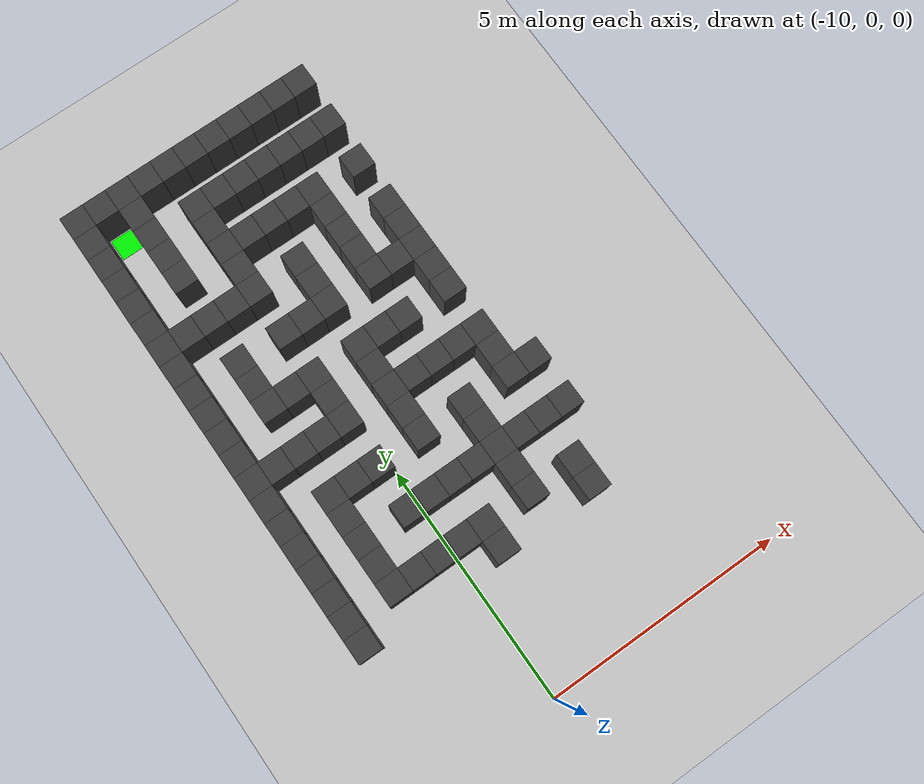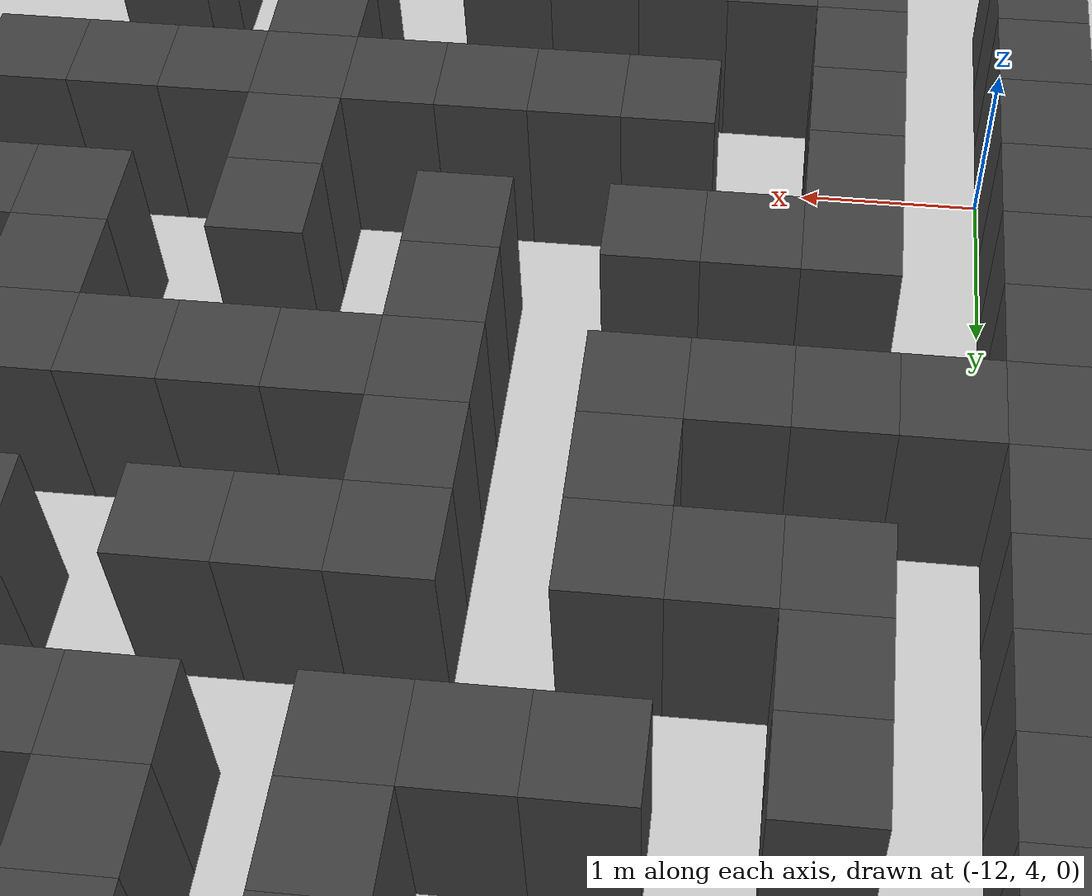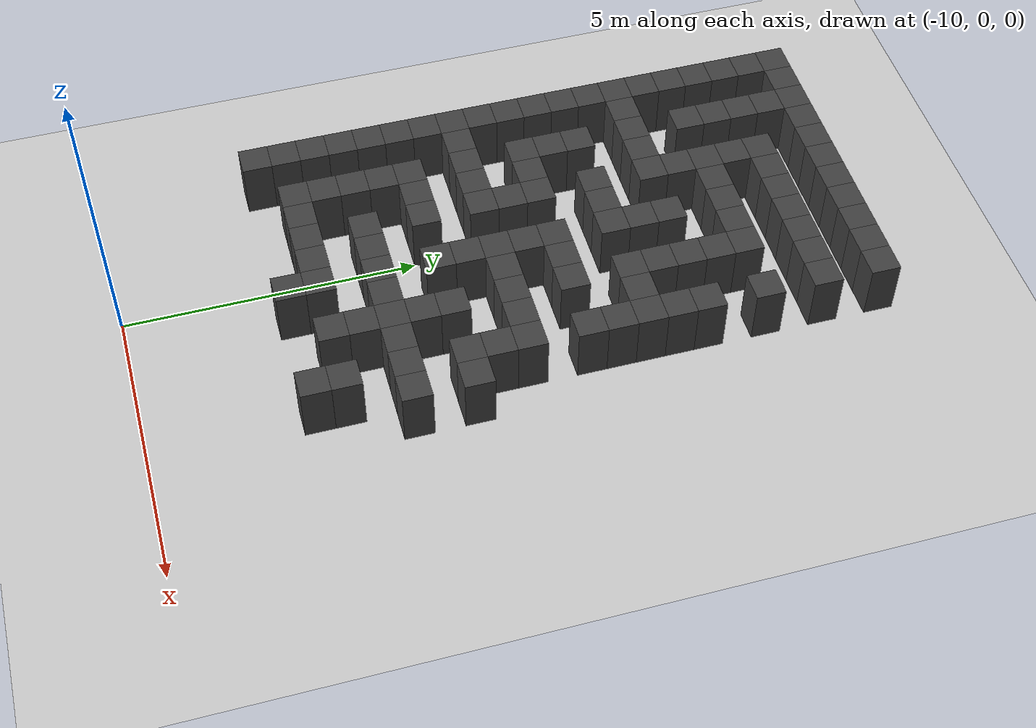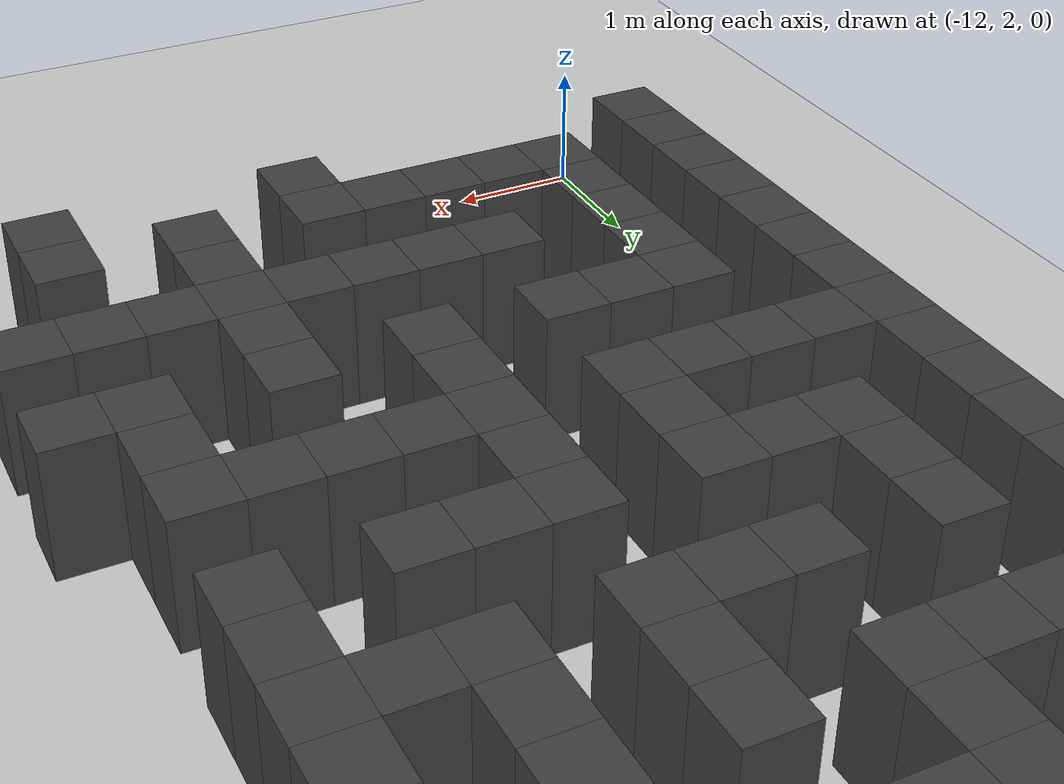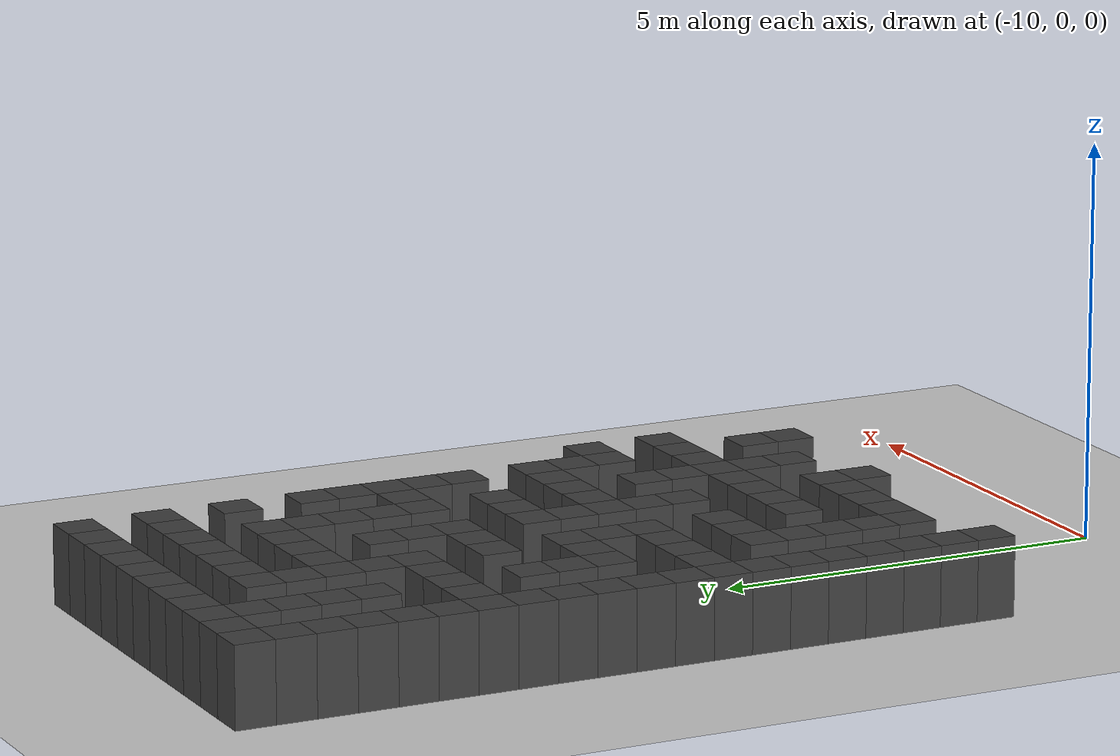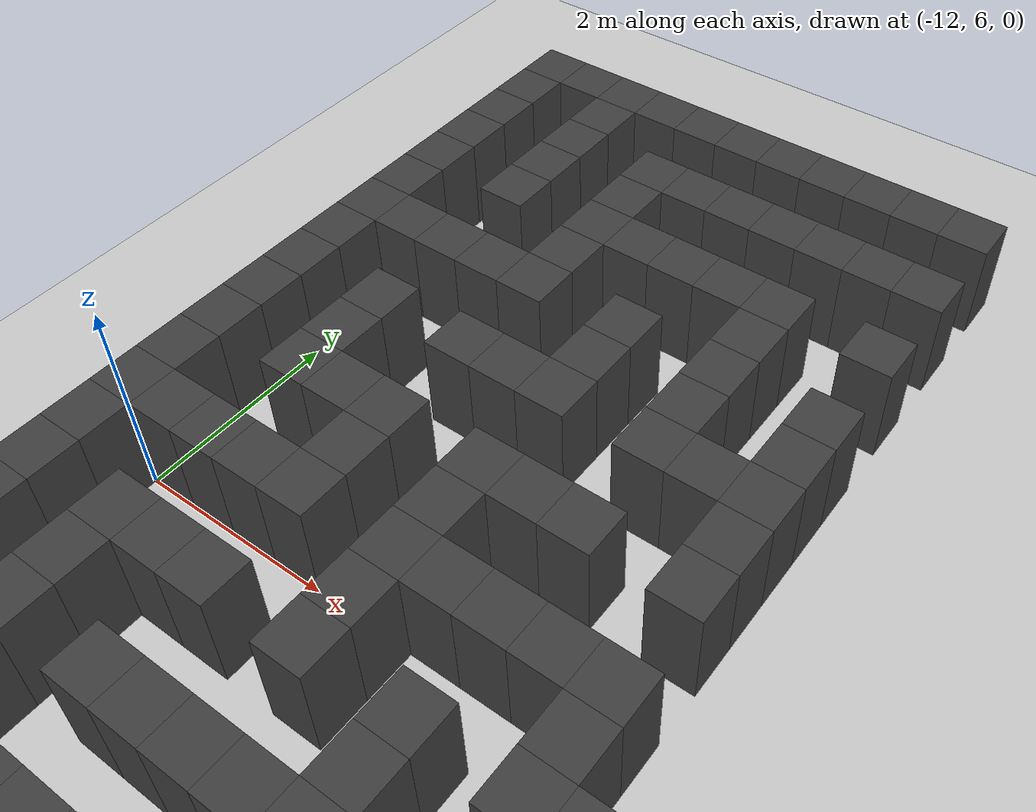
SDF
<sdf version="1.7">
 <world name="map_18505">
  <model name="ground_plane">
   <static>true</static>
   <link name="link">
    <collision name="collision">
     <geometry><plane><normal>0 0 1</normal><size>200 200</size></plane></geometry>
    </collision>
    <visual name="visual">
     <geometry><plane><normal>0 0 1</normal><size>200 200</size></plane></geometry>
     <material><ambient>0.8 0.8 0.8 1</ambient><diffuse>0.8 0.8 0.8 1</diffuse></material>
    </visual>
   </link>
  </model>
  <model name="maze_environment">
   <static>true</static>
   <link name="wall_0">
    <pose>-12.250 12.250 0.500 0 0 0</pose>
    <collision name="col"><geometry><box><size>0.5 0.5 1.0</size></box></geometry></collision>
    <visual name="vis">
     <geometry><box><size>0.5 0.5 1.0</size></box></geometry>
     <material><ambient>0.15 0.15 0.15 1</ambient><diffuse>0.25 0.25 0.25 1</diffuse></material>
    </visual>
   </link>
   <link name="wall_1">
    <pose>-11.750 12.250 0.500 0 0 0</pose>
    <collision name="col"><geometry><box><size>0.5 0.5 1.0</size></box></geometry></collision>
    <visual name="vis">
     <geometry><box><size>0.5 0.5 1.0</size></box></geometry>
     <material><ambient>0.15 0.15 0.15 1</ambient><diffuse>0.25 0.25 0.25 1</diffuse></material>
    </visual>
   </link>
   <link name="wall_2">
    <pose>-11.250 12.250 0.500 0 0 0</pose>
    <collision name="col"><geometry><box><size>0.5 0.5 1.0</size></box></geometry></collision>
    <visual name="vis">
     <geometry><box><size>0.5 0.5 1.0</size></box></geometry>
     <material><ambient>0.15 0.15 0.15 1</ambient><diffuse>0.25 0.25 0.25 1</diffuse></material>
    </visual>
   </link>
   <link name="wall_3">
    <pose>-10.750 12.250 0.500 0 0 0</pose>
    <collision name="col"><geometry><box><size>0.5 0.5 1.0</size></box></geometry></collision>
    <visual name="vis">
     <geometry><box><size>0.5 0.5 1.0</size></box></geometry>
     <material><ambient>0.15 0.15 0.15 1</ambient><diffuse>0.25 0.25 0.25 1</diffuse></material>
    </visual>
   </link>
   <link name="wall_4">
    <pose>-10.250 12.250 0.500 0 0 0</pose>
    <collision name="col"><geometry><box><size>0.5 0.5 1.0</size></box></geometry></collision>
    <visual name="vis">
     <geometry><box><size>0.5 0.5 1.0</size></box></geometry>
     <material><ambient>0.15 0.15 0.15 1</ambient><diffuse>0.25 0.25 0.25 1</diffuse></material>
    </visual>
   </link>
   <link name="wall_5">
    <pose>-9.750 12.250 0.500 0 0 0</pose>
    <collision name="col"><geometry><box><size>0.5 0.5 1.0</size></box></geometry></collision>
    <visual name="vis">
     <geometry><box><size>0.5 0.5 1.0</size></box></geometry>
     <material><ambient>0.15 0.15 0.15 1</ambient><diffuse>0.25 0.25 0.25 1</diffuse></material>
    </visual>
   </link>
   <link name="wall_6">
    <pose>-9.250 12.250 0.500 0 0 0</pose>
    <collision name="col"><geometry><box><size>0.5 0.5 1.0</size></box></geometry></collision>
    <visual name="vis">
     <geometry><box><size>0.5 0.5 1.0</size></box></geometry>
     <material><ambient>0.15 0.15 0.15 1</ambient><diffuse>0.25 0.25 0.25 1</diffuse></material>
    </visual>
   </link>
   <link name="wall_7">
    <pose>-8.750 12.250 0.500 0 0 0</pose>
    <collision name="col"><geometry><box><size>0.5 0.5 1.0</size></box></geometry></collision>
    <visual name="vis">
     <geometry><box><size>0.5 0.5 1.0</size></box></geometry>
     <material><ambient>0.15 0.15 0.15 1</ambient><diffuse>0.25 0.25 0.25 1</diffuse></material>
    </visual>
   </link>
   <link name="wall_8">
    <pose>-8.250 12.250 0.500 0 0 0</pose>
    <collision name="col"><geometry><box><size>0.5 0.5 1.0</size></box></geometry></collision>
    <visual name="vis">
     <geometry><box><size>0.5 0.5 1.0</size></box></geometry>
     <material><ambient>0.15 0.15 0.15 1</ambient><diffuse>0.25 0.25 0.25 1</diffuse></material>
    </visual>
   </link>
   <link name="wall_9">
    <pose>-7.750 12.250 0.500 0 0 0</pose>
    <collision name="col"><geometry><box><size>0.5 0.5 1.0</size></box></geometry></collision>
    <visual name="vis">
     <geometry><box><size>0.5 0.5 1.0</size></box></geometry>
     <material><ambient>0.15 0.15 0.15 1</ambient><diffuse>0.25 0.25 0.25 1</diffuse></material>
    </visual>
   </link>
   <link name="wall_10">
    <pose>-7.250 12.250 0.500 0 0 0</pose>
    <collision name="col"><geometry><box><size>0.5 0.5 1.0</size></box></geometry></collision>
    <visual name="vis">
     <geometry><box><size>0.5 0.5 1.0</size></box></geometry>
     <material><ambient>0.15 0.15 0.15 1</ambient><diffuse>0.25 0.25 0.25 1</diffuse></material>
    </visual>
   </link>
   <link name="wall_50">
    <pose>-12.250 11.750 0.500 0 0 0</pose>
    <collision name="col"><geometry><box><size>0.5 0.5 1.0</size></box></geometry></collision>
    <visual name="vis">
     <geometry><box><size>0.5 0.5 1.0</size></box></geometry>
     <material><ambient>0.15 0.15 0.15 1</ambient><diffuse>0.25 0.25 0.25 1</diffuse></material>
    </visual>
   </link>
   <link name="wall_51">
    <pose>-11.250 11.750 0.500 0 0 0</pose>
    <collision name="col"><geometry><box><size>0.5 0.5 1.0</size></box></geometry></collision>
    <visual name="vis">
     <geometry><box><size>0.5 0.5 1.0</size></box></geometry>
     <material><ambient>0.15 0.15 0.15 1</ambient><diffuse>0.25 0.25 0.25 1</diffuse></material>
    </visual>
   </link>
   <link name="wall_59">
    <pose>-12.250 11.250 0.500 0 0 0</pose>
    <collision name="col"><geometry><box><size>0.5 0.5 1.0</size></box></geometry></collision>
    <visual name="vis">
     <geometry><box><size>0.5 0.5 1.0</size></box></geometry>
     <material><ambient>0.15 0.15 0.15 1</ambient><diffuse>0.25 0.25 0.25 1</diffuse></material>
    </visual>
   </link>
   <link name="wall_60">
    <pose>-11.250 11.250 0.500 0 0 0</pose>
    <collision name="col"><geometry><box><size>0.5 0.5 1.0</size></box></geometry></collision>
    <visual name="vis">
     <geometry><box><size>0.5 0.5 1.0</size></box></geometry>
     <material><ambient>0.15 0.15 0.15 1</ambient><diffuse>0.25 0.25 0.25 1</diffuse></material>
    </visual>
   </link>
   <link name="wall_61">
    <pose>-10.250 11.250 0.500 0 0 0</pose>
    <collision name="col"><geometry><box><size>0.5 0.5 1.0</size></box></geometry></collision>
    <visual name="vis">
     <geometry><box><size>0.5 0.5 1.0</size></box></geometry>
     <material><ambient>0.15 0.15 0.15 1</ambient><diffuse>0.25 0.25 0.25 1</diffuse></material>
    </visual>
   </link>
   <link name="wall_62">
    <pose>-9.750 11.250 0.500 0 0 0</pose>
    <collision name="col"><geometry><box><size>0.5 0.5 1.0</size></box></geometry></collision>
    <visual name="vis">
     <geometry><box><size>0.5 0.5 1.0</size></box></geometry>
     <material><ambient>0.15 0.15 0.15 1</ambient><diffuse>0.25 0.25 0.25 1</diffuse></material>
    </visual>
   </link>
   <link name="wall_63">
    <pose>-9.250 11.250 0.500 0 0 0</pose>
    <collision name="col"><geometry><box><size>0.5 0.5 1.0</size></box></geometry></collision>
    <visual name="vis">
     <geometry><box><size>0.5 0.5 1.0</size></box></geometry>
     <material><ambient>0.15 0.15 0.15 1</ambient><diffuse>0.25 0.25 0.25 1</diffuse></material>
    </visual>
   </link>
   <link name="wall_64">
    <pose>-8.750 11.250 0.500 0 0 0</pose>
    <collision name="col"><geometry><box><size>0.5 0.5 1.0</size></box></geometry></collision>
    <visual name="vis">
     <geometry><box><size>0.5 0.5 1.0</size></box></geometry>
     <material><ambient>0.15 0.15 0.15 1</ambient><diffuse>0.25 0.25 0.25 1</diffuse></material>
    </visual>
   </link>
   <link name="wall_65">
    <pose>-8.250 11.250 0.500 0 0 0</pose>
    <collision name="col"><geometry><box><size>0.5 0.5 1.0</size></box></geometry></collision>
    <visual name="vis">
     <geometry><box><size>0.5 0.5 1.0</size></box></geometry>
     <material><ambient>0.15 0.15 0.15 1</ambient><diffuse>0.25 0.25 0.25 1</diffuse></material>
    </visual>
   </link>
   <link name="wall_66">
    <pose>-7.750 11.250 0.500 0 0 0</pose>
    <collision name="col"><geometry><box><size>0.5 0.5 1.0</size></box></geometry></collision>
    <visual name="vis">
     <geometry><box><size>0.5 0.5 1.0</size></box></geometry>
     <material><ambient>0.15 0.15 0.15 1</ambient><diffuse>0.25 0.25 0.25 1</diffuse></material>
    </visual>
   </link>
   <link name="wall_67">
    <pose>-7.250 11.250 0.500 0 0 0</pose>
    <collision name="col"><geometry><box><size>0.5 0.5 1.0</size></box></geometry></collision>
    <visual name="vis">
     <geometry><box><size>0.5 0.5 1.0</size></box></geometry>
     <material><ambient>0.15 0.15 0.15 1</ambient><diffuse>0.25 0.25 0.25 1</diffuse></material>
    </visual>
   </link>
   <link name="wall_95">
    <pose>-12.250 10.750 0.500 0 0 0</pose>
    <collision name="col"><geometry><box><size>0.5 0.5 1.0</size></box></geometry></collision>
    <visual name="vis">
     <geometry><box><size>0.5 0.5 1.0</size></box></geometry>
     <material><ambient>0.15 0.15 0.15 1</ambient><diffuse>0.25 0.25 0.25 1</diffuse></material>
    </visual>
   </link>
   <link name="wall_96">
    <pose>-11.250 10.750 0.500 0 0 0</pose>
    <collision name="col"><geometry><box><size>0.5 0.5 1.0</size></box></geometry></collision>
    <visual name="vis">
     <geometry><box><size>0.5 0.5 1.0</size></box></geometry>
     <material><ambient>0.15 0.15 0.15 1</ambient><diffuse>0.25 0.25 0.25 1</diffuse></material>
    </visual>
   </link>
   <link name="wall_97">
    <pose>-10.250 10.750 0.500 0 0 0</pose>
    <collision name="col"><geometry><box><size>0.5 0.5 1.0</size></box></geometry></collision>
    <visual name="vis">
     <geometry><box><size>0.5 0.5 1.0</size></box></geometry>
     <material><ambient>0.15 0.15 0.15 1</ambient><diffuse>0.25 0.25 0.25 1</diffuse></material>
    </visual>
   </link>
   <link name="wall_108">
    <pose>-12.250 10.250 0.500 0 0 0</pose>
    <collision name="col"><geometry><box><size>0.5 0.5 1.0</size></box></geometry></collision>
    <visual name="vis">
     <geometry><box><size>0.5 0.5 1.0</size></box></geometry>
     <material><ambient>0.15 0.15 0.15 1</ambient><diffuse>0.25 0.25 0.25 1</diffuse></material>
    </visual>
   </link>
   <link name="wall_109">
    <pose>-11.250 10.250 0.500 0 0 0</pose>
    <collision name="col"><geometry><box><size>0.5 0.5 1.0</size></box></geometry></collision>
    <visual name="vis">
     <geometry><box><size>0.5 0.5 1.0</size></box></geometry>
     <material><ambient>0.15 0.15 0.15 1</ambient><diffuse>0.25 0.25 0.25 1</diffuse></material>
    </visual>
   </link>
   <link name="wall_110">
    <pose>-10.250 10.250 0.500 0 0 0</pose>
    <collision name="col"><geometry><box><size>0.5 0.5 1.0</size></box></geometry></collision>
    <visual name="vis">
     <geometry><box><size>0.5 0.5 1.0</size></box></geometry>
     <material><ambient>0.15 0.15 0.15 1</ambient><diffuse>0.25 0.25 0.25 1</diffuse></material>
    </visual>
   </link>
   <link name="wall_111">
    <pose>-9.750 10.250 0.500 0 0 0</pose>
    <collision name="col"><geometry><box><size>0.5 0.5 1.0</size></box></geometry></collision>
    <visual name="vis">
     <geometry><box><size>0.5 0.5 1.0</size></box></geometry>
     <material><ambient>0.15 0.15 0.15 1</ambient><diffuse>0.25 0.25 0.25 1</diffuse></material>
    </visual>
   </link>
   <link name="wall_112">
    <pose>-9.250 10.250 0.500 0 0 0</pose>
    <collision name="col"><geometry><box><size>0.5 0.5 1.0</size></box></geometry></collision>
    <visual name="vis">
     <geometry><box><size>0.5 0.5 1.0</size></box></geometry>
     <material><ambient>0.15 0.15 0.15 1</ambient><diffuse>0.25 0.25 0.25 1</diffuse></material>
    </visual>
   </link>
   <link name="wall_113">
    <pose>-8.750 10.250 0.500 0 0 0</pose>
    <collision name="col"><geometry><box><size>0.5 0.5 1.0</size></box></geometry></collision>
    <visual name="vis">
     <geometry><box><size>0.5 0.5 1.0</size></box></geometry>
     <material><ambient>0.15 0.15 0.15 1</ambient><diffuse>0.25 0.25 0.25 1</diffuse></material>
    </visual>
   </link>
   <link name="wall_114">
    <pose>-8.250 10.250 0.500 0 0 0</pose>
    <collision name="col"><geometry><box><size>0.5 0.5 1.0</size></box></geometry></collision>
    <visual name="vis">
     <geometry><box><size>0.5 0.5 1.0</size></box></geometry>
     <material><ambient>0.15 0.15 0.15 1</ambient><diffuse>0.25 0.25 0.25 1</diffuse></material>
    </visual>
   </link>
   <link name="wall_115">
    <pose>-7.250 10.250 0.500 0 0 0</pose>
    <collision name="col"><geometry><box><size>0.5 0.5 1.0</size></box></geometry></collision>
    <visual name="vis">
     <geometry><box><size>0.5 0.5 1.0</size></box></geometry>
     <material><ambient>0.15 0.15 0.15 1</ambient><diffuse>0.25 0.25 0.25 1</diffuse></material>
    </visual>
   </link>
   <link name="wall_145">
    <pose>-12.250 9.750 0.500 0 0 0</pose>
    <collision name="col"><geometry><box><size>0.5 0.5 1.0</size></box></geometry></collision>
    <visual name="vis">
     <geometry><box><size>0.5 0.5 1.0</size></box></geometry>
     <material><ambient>0.15 0.15 0.15 1</ambient><diffuse>0.25 0.25 0.25 1</diffuse></material>
    </visual>
   </link>
   <link name="wall_146">
    <pose>-10.250 9.750 0.500 0 0 0</pose>
    <collision name="col"><geometry><box><size>0.5 0.5 1.0</size></box></geometry></collision>
    <visual name="vis">
     <geometry><box><size>0.5 0.5 1.0</size></box></geometry>
     <material><ambient>0.15 0.15 0.15 1</ambient><diffuse>0.25 0.25 0.25 1</diffuse></material>
    </visual>
   </link>
   <link name="wall_147">
    <pose>-8.250 9.750 0.500 0 0 0</pose>
    <collision name="col"><geometry><box><size>0.5 0.5 1.0</size></box></geometry></collision>
    <visual name="vis">
     <geometry><box><size>0.5 0.5 1.0</size></box></geometry>
     <material><ambient>0.15 0.15 0.15 1</ambient><diffuse>0.25 0.25 0.25 1</diffuse></material>
    </visual>
   </link>
   <link name="wall_158">
    <pose>-12.250 9.250 0.500 0 0 0</pose>
    <collision name="col"><geometry><box><size>0.5 0.5 1.0</size></box></geometry></collision>
    <visual name="vis">
     <geometry><box><size>0.5 0.5 1.0</size></box></geometry>
     <material><ambient>0.15 0.15 0.15 1</ambient><diffuse>0.25 0.25 0.25 1</diffuse></material>
    </visual>
   </link>
   <link name="wall_159">
    <pose>-11.750 9.250 0.500 0 0 0</pose>
    <collision name="col"><geometry><box><size>0.5 0.5 1.0</size></box></geometry></collision>
    <visual name="vis">
     <geometry><box><size>0.5 0.5 1.0</size></box></geometry>
     <material><ambient>0.15 0.15 0.15 1</ambient><diffuse>0.25 0.25 0.25 1</diffuse></material>
    </visual>
   </link>
   <link name="wall_160">
    <pose>-11.250 9.250 0.500 0 0 0</pose>
    <collision name="col"><geometry><box><size>0.5 0.5 1.0</size></box></geometry></collision>
    <visual name="vis">
     <geometry><box><size>0.5 0.5 1.0</size></box></geometry>
     <material><ambient>0.15 0.15 0.15 1</ambient><diffuse>0.25 0.25 0.25 1</diffuse></material>
    </visual>
   </link>
   <link name="wall_161">
    <pose>-10.750 9.250 0.500 0 0 0</pose>
    <collision name="col"><geometry><box><size>0.5 0.5 1.0</size></box></geometry></collision>
    <visual name="vis">
     <geometry><box><size>0.5 0.5 1.0</size></box></geometry>
     <material><ambient>0.15 0.15 0.15 1</ambient><diffuse>0.25 0.25 0.25 1</diffuse></material>
    </visual>
   </link>
   <link name="wall_162">
    <pose>-10.250 9.250 0.500 0 0 0</pose>
    <collision name="col"><geometry><box><size>0.5 0.5 1.0</size></box></geometry></collision>
    <visual name="vis">
     <geometry><box><size>0.5 0.5 1.0</size></box></geometry>
     <material><ambient>0.15 0.15 0.15 1</ambient><diffuse>0.25 0.25 0.25 1</diffuse></material>
    </visual>
   </link>
   <link name="wall_163">
    <pose>-9.250 9.250 0.500 0 0 0</pose>
    <collision name="col"><geometry><box><size>0.5 0.5 1.0</size></box></geometry></collision>
    <visual name="vis">
     <geometry><box><size>0.5 0.5 1.0</size></box></geometry>
     <material><ambient>0.15 0.15 0.15 1</ambient><diffuse>0.25 0.25 0.25 1</diffuse></material>
    </visual>
   </link>
   <link name="wall_164">
    <pose>-8.250 9.250 0.500 0 0 0</pose>
    <collision name="col"><geometry><box><size>0.5 0.5 1.0</size></box></geometry></collision>
    <visual name="vis">
     <geometry><box><size>0.5 0.5 1.0</size></box></geometry>
     <material><ambient>0.15 0.15 0.15 1</ambient><diffuse>0.25 0.25 0.25 1</diffuse></material>
    </visual>
   </link>
   <link name="wall_165">
    <pose>-7.250 9.250 0.500 0 0 0</pose>
    <collision name="col"><geometry><box><size>0.5 0.5 1.0</size></box></geometry></collision>
    <visual name="vis">
     <geometry><box><size>0.5 0.5 1.0</size></box></geometry>
     <material><ambient>0.15 0.15 0.15 1</ambient><diffuse>0.25 0.25 0.25 1</diffuse></material>
    </visual>
   </link>
   <link name="wall_193">
    <pose>-12.250 8.750 0.500 0 0 0</pose>
    <collision name="col"><geometry><box><size>0.5 0.5 1.0</size></box></geometry></collision>
    <visual name="vis">
     <geometry><box><size>0.5 0.5 1.0</size></box></geometry>
     <material><ambient>0.15 0.15 0.15 1</ambient><diffuse>0.25 0.25 0.25 1</diffuse></material>
    </visual>
   </link>
   <link name="wall_194">
    <pose>-9.250 8.750 0.500 0 0 0</pose>
    <collision name="col"><geometry><box><size>0.5 0.5 1.0</size></box></geometry></collision>
    <visual name="vis">
     <geometry><box><size>0.5 0.5 1.0</size></box></geometry>
     <material><ambient>0.15 0.15 0.15 1</ambient><diffuse>0.25 0.25 0.25 1</diffuse></material>
    </visual>
   </link>
   <link name="wall_195">
    <pose>-8.250 8.750 0.500 0 0 0</pose>
    <collision name="col"><geometry><box><size>0.5 0.5 1.0</size></box></geometry></collision>
    <visual name="vis">
     <geometry><box><size>0.5 0.5 1.0</size></box></geometry>
     <material><ambient>0.15 0.15 0.15 1</ambient><diffuse>0.25 0.25 0.25 1</diffuse></material>
    </visual>
   </link>
   <link name="wall_196">
    <pose>-7.250 8.750 0.500 0 0 0</pose>
    <collision name="col"><geometry><box><size>0.5 0.5 1.0</size></box></geometry></collision>
    <visual name="vis">
     <geometry><box><size>0.5 0.5 1.0</size></box></geometry>
     <material><ambient>0.15 0.15 0.15 1</ambient><diffuse>0.25 0.25 0.25 1</diffuse></material>
    </visual>
   </link>
   <link name="wall_210">
    <pose>-12.250 8.250 0.500 0 0 0</pose>
    <collision name="col"><geometry><box><size>0.5 0.5 1.0</size></box></geometry></collision>
    <visual name="vis">
     <geometry><box><size>0.5 0.5 1.0</size></box></geometry>
     <material><ambient>0.15 0.15 0.15 1</ambient><diffuse>0.25 0.25 0.25 1</diffuse></material>
    </visual>
   </link>
   <link name="wall_211">
    <pose>-11.250 8.250 0.500 0 0 0</pose>
    <collision name="col"><geometry><box><size>0.5 0.5 1.0</size></box></geometry></collision>
    <visual name="vis">
     <geometry><box><size>0.5 0.5 1.0</size></box></geometry>
     <material><ambient>0.15 0.15 0.15 1</ambient><diffuse>0.25 0.25 0.25 1</diffuse></material>
    </visual>
   </link>
   <link name="wall_212">
    <pose>-10.250 8.250 0.500 0 0 0</pose>
    <collision name="col"><geometry><box><size>0.5 0.5 1.0</size></box></geometry></collision>
    <visual name="vis">
     <geometry><box><size>0.5 0.5 1.0</size></box></geometry>
     <material><ambient>0.15 0.15 0.15 1</ambient><diffuse>0.25 0.25 0.25 1</diffuse></material>
    </visual>
   </link>
   <link name="wall_213">
    <pose>-9.750 8.250 0.500 0 0 0</pose>
    <collision name="col"><geometry><box><size>0.5 0.5 1.0</size></box></geometry></collision>
    <visual name="vis">
     <geometry><box><size>0.5 0.5 1.0</size></box></geometry>
     <material><ambient>0.15 0.15 0.15 1</ambient><diffuse>0.25 0.25 0.25 1</diffuse></material>
    </visual>
   </link>
   <link name="wall_214">
    <pose>-9.250 8.250 0.500 0 0 0</pose>
    <collision name="col"><geometry><box><size>0.5 0.5 1.0</size></box></geometry></collision>
    <visual name="vis">
     <geometry><box><size>0.5 0.5 1.0</size></box></geometry>
     <material><ambient>0.15 0.15 0.15 1</ambient><diffuse>0.25 0.25 0.25 1</diffuse></material>
    </visual>
   </link>
   <link name="wall_215">
    <pose>-8.250 8.250 0.500 0 0 0</pose>
    <collision name="col"><geometry><box><size>0.5 0.5 1.0</size></box></geometry></collision>
    <visual name="vis">
     <geometry><box><size>0.5 0.5 1.0</size></box></geometry>
     <material><ambient>0.15 0.15 0.15 1</ambient><diffuse>0.25 0.25 0.25 1</diffuse></material>
    </visual>
   </link>
   <link name="wall_216">
    <pose>-7.750 8.250 0.500 0 0 0</pose>
    <collision name="col"><geometry><box><size>0.5 0.5 1.0</size></box></geometry></collision>
    <visual name="vis">
     <geometry><box><size>0.5 0.5 1.0</size></box></geometry>
     <material><ambient>0.15 0.15 0.15 1</ambient><diffuse>0.25 0.25 0.25 1</diffuse></material>
    </visual>
   </link>
   <link name="wall_217">
    <pose>-7.250 8.250 0.500 0 0 0</pose>
    <collision name="col"><geometry><box><size>0.5 0.5 1.0</size></box></geometry></collision>
    <visual name="vis">
     <geometry><box><size>0.5 0.5 1.0</size></box></geometry>
     <material><ambient>0.15 0.15 0.15 1</ambient><diffuse>0.25 0.25 0.25 1</diffuse></material>
    </visual>
   </link>
   <link name="wall_243">
    <pose>-12.250 7.750 0.500 0 0 0</pose>
    <collision name="col"><geometry><box><size>0.5 0.5 1.0</size></box></geometry></collision>
    <visual name="vis">
     <geometry><box><size>0.5 0.5 1.0</size></box></geometry>
     <material><ambient>0.15 0.15 0.15 1</ambient><diffuse>0.25 0.25 0.25 1</diffuse></material>
    </visual>
   </link>
   <link name="wall_244">
    <pose>-11.250 7.750 0.500 0 0 0</pose>
    <collision name="col"><geometry><box><size>0.5 0.5 1.0</size></box></geometry></collision>
    <visual name="vis">
     <geometry><box><size>0.5 0.5 1.0</size></box></geometry>
     <material><ambient>0.15 0.15 0.15 1</ambient><diffuse>0.25 0.25 0.25 1</diffuse></material>
    </visual>
   </link>
   <link name="wall_245">
    <pose>-7.250 7.750 0.500 0 0 0</pose>
    <collision name="col"><geometry><box><size>0.5 0.5 1.0</size></box></geometry></collision>
    <visual name="vis">
     <geometry><box><size>0.5 0.5 1.0</size></box></geometry>
     <material><ambient>0.15 0.15 0.15 1</ambient><diffuse>0.25 0.25 0.25 1</diffuse></material>
    </visual>
   </link>
   <link name="wall_257">
    <pose>-12.250 7.250 0.500 0 0 0</pose>
    <collision name="col"><geometry><box><size>0.5 0.5 1.0</size></box></geometry></collision>
    <visual name="vis">
     <geometry><box><size>0.5 0.5 1.0</size></box></geometry>
     <material><ambient>0.15 0.15 0.15 1</ambient><diffuse>0.25 0.25 0.25 1</diffuse></material>
    </visual>
   </link>
   <link name="wall_258">
    <pose>-11.250 7.250 0.500 0 0 0</pose>
    <collision name="col"><geometry><box><size>0.5 0.5 1.0</size></box></geometry></collision>
    <visual name="vis">
     <geometry><box><size>0.5 0.5 1.0</size></box></geometry>
     <material><ambient>0.15 0.15 0.15 1</ambient><diffuse>0.25 0.25 0.25 1</diffuse></material>
    </visual>
   </link>
   <link name="wall_259">
    <pose>-10.750 7.250 0.500 0 0 0</pose>
    <collision name="col"><geometry><box><size>0.5 0.5 1.0</size></box></geometry></collision>
    <visual name="vis">
     <geometry><box><size>0.5 0.5 1.0</size></box></geometry>
     <material><ambient>0.15 0.15 0.15 1</ambient><diffuse>0.25 0.25 0.25 1</diffuse></material>
    </visual>
   </link>
   <link name="wall_260">
    <pose>-10.250 7.250 0.500 0 0 0</pose>
    <collision name="col"><geometry><box><size>0.5 0.5 1.0</size></box></geometry></collision>
    <visual name="vis">
     <geometry><box><size>0.5 0.5 1.0</size></box></geometry>
     <material><ambient>0.15 0.15 0.15 1</ambient><diffuse>0.25 0.25 0.25 1</diffuse></material>
    </visual>
   </link>
   <link name="wall_261">
    <pose>-9.250 7.250 0.500 0 0 0</pose>
    <collision name="col"><geometry><box><size>0.5 0.5 1.0</size></box></geometry></collision>
    <visual name="vis">
     <geometry><box><size>0.5 0.5 1.0</size></box></geometry>
     <material><ambient>0.15 0.15 0.15 1</ambient><diffuse>0.25 0.25 0.25 1</diffuse></material>
    </visual>
   </link>
   <link name="wall_262">
    <pose>-8.750 7.250 0.500 0 0 0</pose>
    <collision name="col"><geometry><box><size>0.5 0.5 1.0</size></box></geometry></collision>
    <visual name="vis">
     <geometry><box><size>0.5 0.5 1.0</size></box></geometry>
     <material><ambient>0.15 0.15 0.15 1</ambient><diffuse>0.25 0.25 0.25 1</diffuse></material>
    </visual>
   </link>
   <link name="wall_263">
    <pose>-8.250 7.250 0.500 0 0 0</pose>
    <collision name="col"><geometry><box><size>0.5 0.5 1.0</size></box></geometry></collision>
    <visual name="vis">
     <geometry><box><size>0.5 0.5 1.0</size></box></geometry>
     <material><ambient>0.15 0.15 0.15 1</ambient><diffuse>0.25 0.25 0.25 1</diffuse></material>
    </visual>
   </link>
   <link name="wall_264">
    <pose>-7.250 7.250 0.500 0 0 0</pose>
    <collision name="col"><geometry><box><size>0.5 0.5 1.0</size></box></geometry></collision>
    <visual name="vis">
     <geometry><box><size>0.5 0.5 1.0</size></box></geometry>
     <material><ambient>0.15 0.15 0.15 1</ambient><diffuse>0.25 0.25 0.25 1</diffuse></material>
    </visual>
   </link>
   <link name="wall_294">
    <pose>-12.250 6.750 0.500 0 0 0</pose>
    <collision name="col"><geometry><box><size>0.5 0.5 1.0</size></box></geometry></collision>
    <visual name="vis">
     <geometry><box><size>0.5 0.5 1.0</size></box></geometry>
     <material><ambient>0.15 0.15 0.15 1</ambient><diffuse>0.25 0.25 0.25 1</diffuse></material>
    </visual>
   </link>
   <link name="wall_295">
    <pose>-10.250 6.750 0.500 0 0 0</pose>
    <collision name="col"><geometry><box><size>0.5 0.5 1.0</size></box></geometry></collision>
    <visual name="vis">
     <geometry><box><size>0.5 0.5 1.0</size></box></geometry>
     <material><ambient>0.15 0.15 0.15 1</ambient><diffuse>0.25 0.25 0.25 1</diffuse></material>
    </visual>
   </link>
   <link name="wall_296">
    <pose>-9.250 6.750 0.500 0 0 0</pose>
    <collision name="col"><geometry><box><size>0.5 0.5 1.0</size></box></geometry></collision>
    <visual name="vis">
     <geometry><box><size>0.5 0.5 1.0</size></box></geometry>
     <material><ambient>0.15 0.15 0.15 1</ambient><diffuse>0.25 0.25 0.25 1</diffuse></material>
    </visual>
   </link>
   <link name="wall_304">
    <pose>-12.250 6.250 0.500 0 0 0</pose>
    <collision name="col"><geometry><box><size>0.5 0.5 1.0</size></box></geometry></collision>
    <visual name="vis">
     <geometry><box><size>0.5 0.5 1.0</size></box></geometry>
     <material><ambient>0.15 0.15 0.15 1</ambient><diffuse>0.25 0.25 0.25 1</diffuse></material>
    </visual>
   </link>
   <link name="wall_305">
    <pose>-11.750 6.250 0.500 0 0 0</pose>
    <collision name="col"><geometry><box><size>0.5 0.5 1.0</size></box></geometry></collision>
    <visual name="vis">
     <geometry><box><size>0.5 0.5 1.0</size></box></geometry>
     <material><ambient>0.15 0.15 0.15 1</ambient><diffuse>0.25 0.25 0.25 1</diffuse></material>
    </visual>
   </link>
   <link name="wall_306">
    <pose>-11.250 6.250 0.500 0 0 0</pose>
    <collision name="col"><geometry><box><size>0.5 0.5 1.0</size></box></geometry></collision>
    <visual name="vis">
     <geometry><box><size>0.5 0.5 1.0</size></box></geometry>
     <material><ambient>0.15 0.15 0.15 1</ambient><diffuse>0.25 0.25 0.25 1</diffuse></material>
    </visual>
   </link>
   <link name="wall_307">
    <pose>-10.750 6.250 0.500 0 0 0</pose>
    <collision name="col"><geometry><box><size>0.5 0.5 1.0</size></box></geometry></collision>
    <visual name="vis">
     <geometry><box><size>0.5 0.5 1.0</size></box></geometry>
     <material><ambient>0.15 0.15 0.15 1</ambient><diffuse>0.25 0.25 0.25 1</diffuse></material>
    </visual>
   </link>
   <link name="wall_308">
    <pose>-10.250 6.250 0.500 0 0 0</pose>
    <collision name="col"><geometry><box><size>0.5 0.5 1.0</size></box></geometry></collision>
    <visual name="vis">
     <geometry><box><size>0.5 0.5 1.0</size></box></geometry>
     <material><ambient>0.15 0.15 0.15 1</ambient><diffuse>0.25 0.25 0.25 1</diffuse></material>
    </visual>
   </link>
   <link name="wall_309">
    <pose>-9.250 6.250 0.500 0 0 0</pose>
    <collision name="col"><geometry><box><size>0.5 0.5 1.0</size></box></geometry></collision>
    <visual name="vis">
     <geometry><box><size>0.5 0.5 1.0</size></box></geometry>
     <material><ambient>0.15 0.15 0.15 1</ambient><diffuse>0.25 0.25 0.25 1</diffuse></material>
    </visual>
   </link>
   <link name="wall_310">
    <pose>-8.750 6.250 0.500 0 0 0</pose>
    <collision name="col"><geometry><box><size>0.5 0.5 1.0</size></box></geometry></collision>
    <visual name="vis">
     <geometry><box><size>0.5 0.5 1.0</size></box></geometry>
     <material><ambient>0.15 0.15 0.15 1</ambient><diffuse>0.25 0.25 0.25 1</diffuse></material>
    </visual>
   </link>
   <link name="wall_311">
    <pose>-8.250 6.250 0.500 0 0 0</pose>
    <collision name="col"><geometry><box><size>0.5 0.5 1.0</size></box></geometry></collision>
    <visual name="vis">
     <geometry><box><size>0.5 0.5 1.0</size></box></geometry>
     <material><ambient>0.15 0.15 0.15 1</ambient><diffuse>0.25 0.25 0.25 1</diffuse></material>
    </visual>
   </link>
   <link name="wall_312">
    <pose>-7.750 6.250 0.500 0 0 0</pose>
    <collision name="col"><geometry><box><size>0.5 0.5 1.0</size></box></geometry></collision>
    <visual name="vis">
     <geometry><box><size>0.5 0.5 1.0</size></box></geometry>
     <material><ambient>0.15 0.15 0.15 1</ambient><diffuse>0.25 0.25 0.25 1</diffuse></material>
    </visual>
   </link>
   <link name="wall_313">
    <pose>-7.250 6.250 0.500 0 0 0</pose>
    <collision name="col"><geometry><box><size>0.5 0.5 1.0</size></box></geometry></collision>
    <visual name="vis">
     <geometry><box><size>0.5 0.5 1.0</size></box></geometry>
     <material><ambient>0.15 0.15 0.15 1</ambient><diffuse>0.25 0.25 0.25 1</diffuse></material>
    </visual>
   </link>
   <link name="wall_343">
    <pose>-12.250 5.750 0.500 0 0 0</pose>
    <collision name="col"><geometry><box><size>0.5 0.5 1.0</size></box></geometry></collision>
    <visual name="vis">
     <geometry><box><size>0.5 0.5 1.0</size></box></geometry>
     <material><ambient>0.15 0.15 0.15 1</ambient><diffuse>0.25 0.25 0.25 1</diffuse></material>
    </visual>
   </link>
   <link name="wall_344">
    <pose>-9.250 5.750 0.500 0 0 0</pose>
    <collision name="col"><geometry><box><size>0.5 0.5 1.0</size></box></geometry></collision>
    <visual name="vis">
     <geometry><box><size>0.5 0.5 1.0</size></box></geometry>
     <material><ambient>0.15 0.15 0.15 1</ambient><diffuse>0.25 0.25 0.25 1</diffuse></material>
    </visual>
   </link>
   <link name="wall_345">
    <pose>-7.250 5.750 0.500 0 0 0</pose>
    <collision name="col"><geometry><box><size>0.5 0.5 1.0</size></box></geometry></collision>
    <visual name="vis">
     <geometry><box><size>0.5 0.5 1.0</size></box></geometry>
     <material><ambient>0.15 0.15 0.15 1</ambient><diffuse>0.25 0.25 0.25 1</diffuse></material>
    </visual>
   </link>
   <link name="wall_359">
    <pose>-12.250 5.250 0.500 0 0 0</pose>
    <collision name="col"><geometry><box><size>0.5 0.5 1.0</size></box></geometry></collision>
    <visual name="vis">
     <geometry><box><size>0.5 0.5 1.0</size></box></geometry>
     <material><ambient>0.15 0.15 0.15 1</ambient><diffuse>0.25 0.25 0.25 1</diffuse></material>
    </visual>
   </link>
   <link name="wall_360">
    <pose>-11.250 5.250 0.500 0 0 0</pose>
    <collision name="col"><geometry><box><size>0.5 0.5 1.0</size></box></geometry></collision>
    <visual name="vis">
     <geometry><box><size>0.5 0.5 1.0</size></box></geometry>
     <material><ambient>0.15 0.15 0.15 1</ambient><diffuse>0.25 0.25 0.25 1</diffuse></material>
    </visual>
   </link>
   <link name="wall_361">
    <pose>-10.750 5.250 0.500 0 0 0</pose>
    <collision name="col"><geometry><box><size>0.5 0.5 1.0</size></box></geometry></collision>
    <visual name="vis">
     <geometry><box><size>0.5 0.5 1.0</size></box></geometry>
     <material><ambient>0.15 0.15 0.15 1</ambient><diffuse>0.25 0.25 0.25 1</diffuse></material>
    </visual>
   </link>
   <link name="wall_362">
    <pose>-10.250 5.250 0.500 0 0 0</pose>
    <collision name="col"><geometry><box><size>0.5 0.5 1.0</size></box></geometry></collision>
    <visual name="vis">
     <geometry><box><size>0.5 0.5 1.0</size></box></geometry>
     <material><ambient>0.15 0.15 0.15 1</ambient><diffuse>0.25 0.25 0.25 1</diffuse></material>
    </visual>
   </link>
   <link name="wall_363">
    <pose>-9.250 5.250 0.500 0 0 0</pose>
    <collision name="col"><geometry><box><size>0.5 0.5 1.0</size></box></geometry></collision>
    <visual name="vis">
     <geometry><box><size>0.5 0.5 1.0</size></box></geometry>
     <material><ambient>0.15 0.15 0.15 1</ambient><diffuse>0.25 0.25 0.25 1</diffuse></material>
    </visual>
   </link>
   <link name="wall_364">
    <pose>-8.250 5.250 0.500 0 0 0</pose>
    <collision name="col"><geometry><box><size>0.5 0.5 1.0</size></box></geometry></collision>
    <visual name="vis">
     <geometry><box><size>0.5 0.5 1.0</size></box></geometry>
     <material><ambient>0.15 0.15 0.15 1</ambient><diffuse>0.25 0.25 0.25 1</diffuse></material>
    </visual>
   </link>
   <link name="wall_365">
    <pose>-7.250 5.250 0.500 0 0 0</pose>
    <collision name="col"><geometry><box><size>0.5 0.5 1.0</size></box></geometry></collision>
    <visual name="vis">
     <geometry><box><size>0.5 0.5 1.0</size></box></geometry>
     <material><ambient>0.15 0.15 0.15 1</ambient><diffuse>0.25 0.25 0.25 1</diffuse></material>
    </visual>
   </link>
   <link name="wall_366">
    <pose>-6.750 5.250 0.500 0 0 0</pose>
    <collision name="col"><geometry><box><size>0.5 0.5 1.0</size></box></geometry></collision>
    <visual name="vis">
     <geometry><box><size>0.5 0.5 1.0</size></box></geometry>
     <material><ambient>0.15 0.15 0.15 1</ambient><diffuse>0.25 0.25 0.25 1</diffuse></material>
    </visual>
   </link>
   <link name="wall_395">
    <pose>-12.250 4.750 0.500 0 0 0</pose>
    <collision name="col"><geometry><box><size>0.5 0.5 1.0</size></box></geometry></collision>
    <visual name="vis">
     <geometry><box><size>0.5 0.5 1.0</size></box></geometry>
     <material><ambient>0.15 0.15 0.15 1</ambient><diffuse>0.25 0.25 0.25 1</diffuse></material>
    </visual>
   </link>
   <link name="wall_396">
    <pose>-11.250 4.750 0.500 0 0 0</pose>
    <collision name="col"><geometry><box><size>0.5 0.5 1.0</size></box></geometry></collision>
    <visual name="vis">
     <geometry><box><size>0.5 0.5 1.0</size></box></geometry>
     <material><ambient>0.15 0.15 0.15 1</ambient><diffuse>0.25 0.25 0.25 1</diffuse></material>
    </visual>
   </link>
   <link name="wall_397">
    <pose>-8.250 4.750 0.500 0 0 0</pose>
    <collision name="col"><geometry><box><size>0.5 0.5 1.0</size></box></geometry></collision>
    <visual name="vis">
     <geometry><box><size>0.5 0.5 1.0</size></box></geometry>
     <material><ambient>0.15 0.15 0.15 1</ambient><diffuse>0.25 0.25 0.25 1</diffuse></material>
    </visual>
   </link>
   <link name="wall_410">
    <pose>-12.250 4.250 0.500 0 0 0</pose>
    <collision name="col"><geometry><box><size>0.5 0.5 1.0</size></box></geometry></collision>
    <visual name="vis">
     <geometry><box><size>0.5 0.5 1.0</size></box></geometry>
     <material><ambient>0.15 0.15 0.15 1</ambient><diffuse>0.25 0.25 0.25 1</diffuse></material>
    </visual>
   </link>
   <link name="wall_411">
    <pose>-11.250 4.250 0.500 0 0 0</pose>
    <collision name="col"><geometry><box><size>0.5 0.5 1.0</size></box></geometry></collision>
    <visual name="vis">
     <geometry><box><size>0.5 0.5 1.0</size></box></geometry>
     <material><ambient>0.15 0.15 0.15 1</ambient><diffuse>0.25 0.25 0.25 1</diffuse></material>
    </visual>
   </link>
   <link name="wall_412">
    <pose>-10.250 4.250 0.500 0 0 0</pose>
    <collision name="col"><geometry><box><size>0.5 0.5 1.0</size></box></geometry></collision>
    <visual name="vis">
     <geometry><box><size>0.5 0.5 1.0</size></box></geometry>
     <material><ambient>0.15 0.15 0.15 1</ambient><diffuse>0.25 0.25 0.25 1</diffuse></material>
    </visual>
   </link>
   <link name="wall_413">
    <pose>-9.750 4.250 0.500 0 0 0</pose>
    <collision name="col"><geometry><box><size>0.5 0.5 1.0</size></box></geometry></collision>
    <visual name="vis">
     <geometry><box><size>0.5 0.5 1.0</size></box></geometry>
     <material><ambient>0.15 0.15 0.15 1</ambient><diffuse>0.25 0.25 0.25 1</diffuse></material>
    </visual>
   </link>
   <link name="wall_414">
    <pose>-9.250 4.250 0.500 0 0 0</pose>
    <collision name="col"><geometry><box><size>0.5 0.5 1.0</size></box></geometry></collision>
    <visual name="vis">
     <geometry><box><size>0.5 0.5 1.0</size></box></geometry>
     <material><ambient>0.15 0.15 0.15 1</ambient><diffuse>0.25 0.25 0.25 1</diffuse></material>
    </visual>
   </link>
   <link name="wall_415">
    <pose>-8.750 4.250 0.500 0 0 0</pose>
    <collision name="col"><geometry><box><size>0.5 0.5 1.0</size></box></geometry></collision>
    <visual name="vis">
     <geometry><box><size>0.5 0.5 1.0</size></box></geometry>
     <material><ambient>0.15 0.15 0.15 1</ambient><diffuse>0.25 0.25 0.25 1</diffuse></material>
    </visual>
   </link>
   <link name="wall_416">
    <pose>-8.250 4.250 0.500 0 0 0</pose>
    <collision name="col"><geometry><box><size>0.5 0.5 1.0</size></box></geometry></collision>
    <visual name="vis">
     <geometry><box><size>0.5 0.5 1.0</size></box></geometry>
     <material><ambient>0.15 0.15 0.15 1</ambient><diffuse>0.25 0.25 0.25 1</diffuse></material>
    </visual>
   </link>
   <link name="wall_417">
    <pose>-7.750 4.250 0.500 0 0 0</pose>
    <collision name="col"><geometry><box><size>0.5 0.5 1.0</size></box></geometry></collision>
    <visual name="vis">
     <geometry><box><size>0.5 0.5 1.0</size></box></geometry>
     <material><ambient>0.15 0.15 0.15 1</ambient><diffuse>0.25 0.25 0.25 1</diffuse></material>
    </visual>
   </link>
   <link name="wall_418">
    <pose>-7.250 4.250 0.500 0 0 0</pose>
    <collision name="col"><geometry><box><size>0.5 0.5 1.0</size></box></geometry></collision>
    <visual name="vis">
     <geometry><box><size>0.5 0.5 1.0</size></box></geometry>
     <material><ambient>0.15 0.15 0.15 1</ambient><diffuse>0.25 0.25 0.25 1</diffuse></material>
    </visual>
   </link>
   <link name="wall_419">
    <pose>-6.750 4.250 0.500 0 0 0</pose>
    <collision name="col"><geometry><box><size>0.5 0.5 1.0</size></box></geometry></collision>
    <visual name="vis">
     <geometry><box><size>0.5 0.5 1.0</size></box></geometry>
     <material><ambient>0.15 0.15 0.15 1</ambient><diffuse>0.25 0.25 0.25 1</diffuse></material>
    </visual>
   </link>
   <link name="wall_445">
    <pose>-12.250 3.750 0.500 0 0 0</pose>
    <collision name="col"><geometry><box><size>0.5 0.5 1.0</size></box></geometry></collision>
    <visual name="vis">
     <geometry><box><size>0.5 0.5 1.0</size></box></geometry>
     <material><ambient>0.15 0.15 0.15 1</ambient><diffuse>0.25 0.25 0.25 1</diffuse></material>
    </visual>
   </link>
   <link name="wall_446">
    <pose>-11.250 3.750 0.500 0 0 0</pose>
    <collision name="col"><geometry><box><size>0.5 0.5 1.0</size></box></geometry></collision>
    <visual name="vis">
     <geometry><box><size>0.5 0.5 1.0</size></box></geometry>
     <material><ambient>0.15 0.15 0.15 1</ambient><diffuse>0.25 0.25 0.25 1</diffuse></material>
    </visual>
   </link>
   <link name="wall_447">
    <pose>-8.250 3.750 0.500 0 0 0</pose>
    <collision name="col"><geometry><box><size>0.5 0.5 1.0</size></box></geometry></collision>
    <visual name="vis">
     <geometry><box><size>0.5 0.5 1.0</size></box></geometry>
     <material><ambient>0.15 0.15 0.15 1</ambient><diffuse>0.25 0.25 0.25 1</diffuse></material>
    </visual>
   </link>
   <link name="wall_461">
    <pose>-12.250 3.250 0.500 0 0 0</pose>
    <collision name="col"><geometry><box><size>0.5 0.5 1.0</size></box></geometry></collision>
    <visual name="vis">
     <geometry><box><size>0.5 0.5 1.0</size></box></geometry>
     <material><ambient>0.15 0.15 0.15 1</ambient><diffuse>0.25 0.25 0.25 1</diffuse></material>
    </visual>
   </link>
   <link name="wall_462">
    <pose>-11.250 3.250 0.500 0 0 0</pose>
    <collision name="col"><geometry><box><size>0.5 0.5 1.0</size></box></geometry></collision>
    <visual name="vis">
     <geometry><box><size>0.5 0.5 1.0</size></box></geometry>
     <material><ambient>0.15 0.15 0.15 1</ambient><diffuse>0.25 0.25 0.25 1</diffuse></material>
    </visual>
   </link>
   <link name="wall_463">
    <pose>-10.750 3.250 0.500 0 0 0</pose>
    <collision name="col"><geometry><box><size>0.5 0.5 1.0</size></box></geometry></collision>
    <visual name="vis">
     <geometry><box><size>0.5 0.5 1.0</size></box></geometry>
     <material><ambient>0.15 0.15 0.15 1</ambient><diffuse>0.25 0.25 0.25 1</diffuse></material>
    </visual>
   </link>
   <link name="wall_464">
    <pose>-10.250 3.250 0.500 0 0 0</pose>
    <collision name="col"><geometry><box><size>0.5 0.5 1.0</size></box></geometry></collision>
    <visual name="vis">
     <geometry><box><size>0.5 0.5 1.0</size></box></geometry>
     <material><ambient>0.15 0.15 0.15 1</ambient><diffuse>0.25 0.25 0.25 1</diffuse></material>
    </visual>
   </link>
   <link name="wall_465">
    <pose>-9.750 3.250 0.500 0 0 0</pose>
    <collision name="col"><geometry><box><size>0.5 0.5 1.0</size></box></geometry></collision>
    <visual name="vis">
     <geometry><box><size>0.5 0.5 1.0</size></box></geometry>
     <material><ambient>0.15 0.15 0.15 1</ambient><diffuse>0.25 0.25 0.25 1</diffuse></material>
    </visual>
   </link>
   <link name="wall_466">
    <pose>-9.250 3.250 0.500 0 0 0</pose>
    <collision name="col"><geometry><box><size>0.5 0.5 1.0</size></box></geometry></collision>
    <visual name="vis">
     <geometry><box><size>0.5 0.5 1.0</size></box></geometry>
     <material><ambient>0.15 0.15 0.15 1</ambient><diffuse>0.25 0.25 0.25 1</diffuse></material>
    </visual>
   </link>
   <link name="wall_467">
    <pose>-8.250 3.250 0.500 0 0 0</pose>
    <collision name="col"><geometry><box><size>0.5 0.5 1.0</size></box></geometry></collision>
    <visual name="vis">
     <geometry><box><size>0.5 0.5 1.0</size></box></geometry>
     <material><ambient>0.15 0.15 0.15 1</ambient><diffuse>0.25 0.25 0.25 1</diffuse></material>
    </visual>
   </link>
   <link name="wall_468">
    <pose>-7.250 3.250 0.500 0 0 0</pose>
    <collision name="col"><geometry><box><size>0.5 0.5 1.0</size></box></geometry></collision>
    <visual name="vis">
     <geometry><box><size>0.5 0.5 1.0</size></box></geometry>
     <material><ambient>0.15 0.15 0.15 1</ambient><diffuse>0.25 0.25 0.25 1</diffuse></material>
    </visual>
   </link>
   <link name="wall_496">
    <pose>-12.250 2.750 0.500 0 0 0</pose>
    <collision name="col"><geometry><box><size>0.5 0.5 1.0</size></box></geometry></collision>
    <visual name="vis">
     <geometry><box><size>0.5 0.5 1.0</size></box></geometry>
     <material><ambient>0.15 0.15 0.15 1</ambient><diffuse>0.25 0.25 0.25 1</diffuse></material>
    </visual>
   </link>
   <link name="wall_497">
    <pose>-9.250 2.750 0.500 0 0 0</pose>
    <collision name="col"><geometry><box><size>0.5 0.5 1.0</size></box></geometry></collision>
    <visual name="vis">
     <geometry><box><size>0.5 0.5 1.0</size></box></geometry>
     <material><ambient>0.15 0.15 0.15 1</ambient><diffuse>0.25 0.25 0.25 1</diffuse></material>
    </visual>
   </link>
   <link name="wall_498">
    <pose>-7.250 2.750 0.500 0 0 0</pose>
    <collision name="col"><geometry><box><size>0.5 0.5 1.0</size></box></geometry></collision>
    <visual name="vis">
     <geometry><box><size>0.5 0.5 1.0</size></box></geometry>
     <material><ambient>0.15 0.15 0.15 1</ambient><diffuse>0.25 0.25 0.25 1</diffuse></material>
    </visual>
   </link>
   <link name="start_zone">
    <pose>-11.750 11.750 0.005 0 0 0</pose>
    <visual name="vis">
     <geometry><box><size>0.45 0.45 0.01</size></box></geometry>
     <material>
      <ambient>0.0 1.0 0.0 1</ambient>
      <diffuse>0.0 1.0 0.0 1</diffuse>
      <emissive>0.00 0.60 0.00 1</emissive>
     </material>
    </visual>
   </link>
  </model>
 </world>
</sdf>
